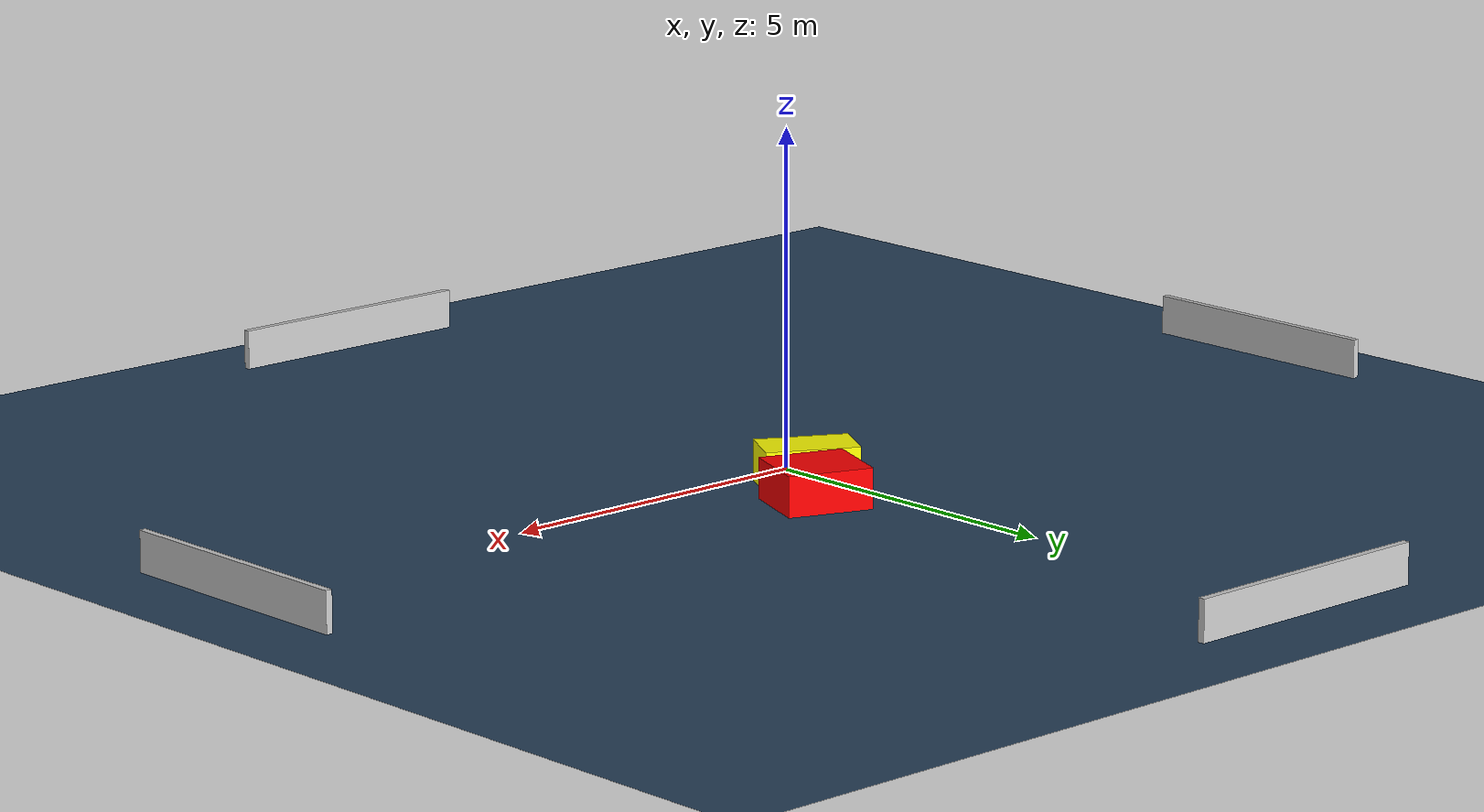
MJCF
<?xml version="1.0" ?>
<mujoco model="generated_environment">
  <option timestep="0.01" integrator="RK4" cone="elliptic"/>
  <default>
    <geom density="1"/>
  </default>
  <asset>
    <texture builtin="gradient" height="3072" name="skybox" rgb1="0.3 0.5 0.7" rgb2="0 0 0" type="skybox" width="512"/>
    <texture builtin="checker" height="300" name="groundplane" rgb1="0.2 0.3 0.4" rgb2="0.1 0.2 0.3" type="2d" width="300"/>
    <material name="groundplane" reflectance="0.2" texrepeat="5 5" texture="groundplane"/>
  </asset>
  <worldbody>
    <light dir="0 0 -1" directional="true" pos="0 0 1.5"/>
    <geom condim="3" friction="0.5 0.005 0.001" material="groundplane" name="floor" pos="0 0 0" size="0 0 0.05" type="plane"/>
    <body name="walls">
      <geom name="wall_1" condim="4" pos="-10.0 0.0 0.3" rgba="0.800000011920929 0.800000011920929 0.800000011920929 1.0" size="0.05 2.0 0.3" type="box"/>
      <geom name="wall_2" condim="4" pos="10.0 0.0 0.3" rgba="0.800000011920929 0.800000011920929 0.800000011920929 1.0" size="0.05 2.0 0.3" type="box"/>
      <geom name="wall_3" condim="4" pos="0.0 -10.0 0.3" rgba="0.800000011920929 0.800000011920929 0.800000011920929 1.0" size="2.0 0.05 0.3" type="box"/>
      <geom name="wall_4" condim="4" pos="0.0 10.0 0.3" rgba="0.800000011920929 0.800000011920929 0.800000011920929 1.0" size="2.0 0.05 0.3" type="box"/>
    </body>
    <body name="robot">
      <joint name="joint_x" type="slide" pos="0 0 0" axis="1 0 0"/>
      <joint name="joint_y" type="slide" pos="0 0 0" axis="0 1 0"/>
      <geom name="robot" type="cylinder" pos="0.0 0.0 0.2" size="0.2 0.2 0.0" mass="5.0" friction="1.0 0.005 0.0001" condim="4" rgba="1.0 1.0 0.0 1.0"/>
    </body>
    <body name="obstacle_1_movable">
      <geom name="obstacle_1_movable" condim="4" pos="0.34119037060802554 0.7891992340838367 0.3" euler="0 0 330.48803893820394" friction="0.0 0.005 0.001" rgba="1.0 1.0 0.0 1.0" size="0.6961700839264399 0.38773109089678914 0.3" type="box" mass="0.1"/>
      <joint type="free"/>
    </body>
    <body name="obstacle_2_static">
      <geom name="obstacle_2_static" condim="4" pos="0.9892658925522719 1.6572428075036345 0.3" euler="0 0 159.06446997328263" friction="0.0 0.005 0.001" rgba="1.0 0.0 0.0 1.0" size="0.6380303691187011 0.5655757564538089 0.3" type="box"/>
    </body>
  </worldbody>
  <actuator>
    <motor name="actuator_x" joint="joint_x" gear="1" ctrlrange="-1 1"/>
    <motor name="actuator_y" joint="joint_y" gear="1" ctrlrange="-1 1"/>
  </actuator>
</mujoco>
